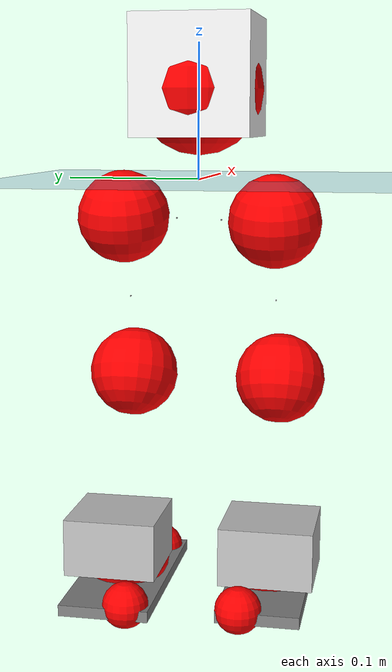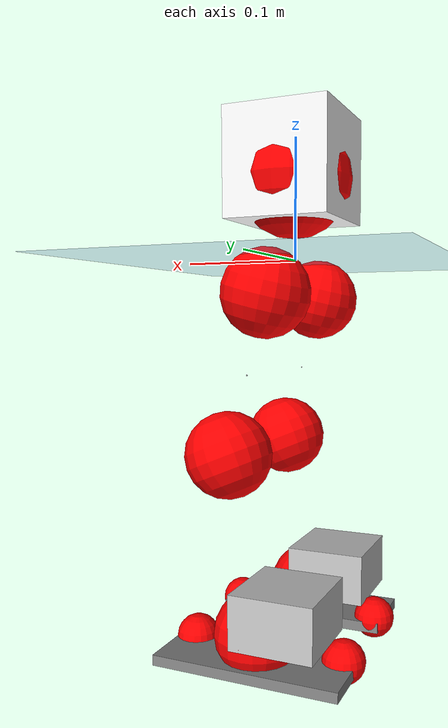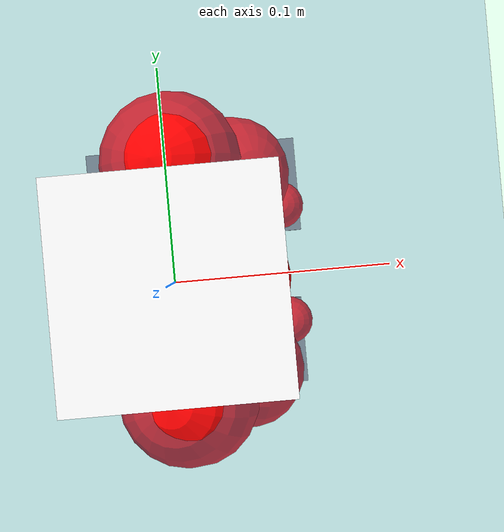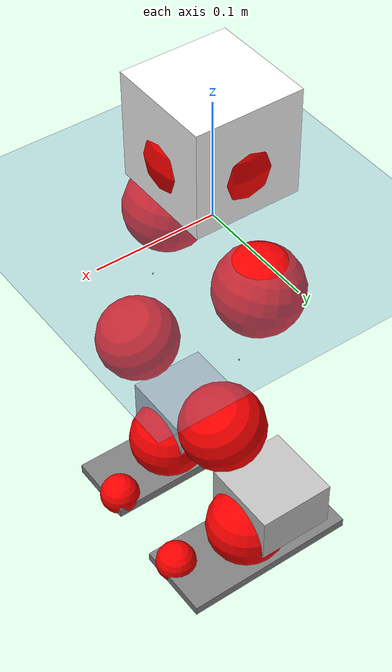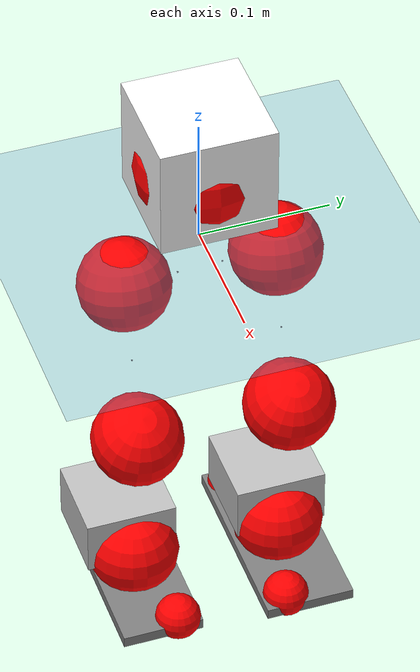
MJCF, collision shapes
<mujoco model="pi_12dof_release_v1">
  <compiler angle="radian" assetdir="assets" balanceinertia="true" inertiafromgeom="false"/>

  <option timestep="0.005" density="1.2" viscosity="2e-05"/>

  <size nkey="1"/>

  <visual>
    <quality shadowsize="8192"/>
    <map shadowclip="0.5"/>
  </visual>

  <default>
    <default class="/">
      <joint armature="0.01" damping="0.01" frictionloss="0.01"/>
      <geom contype="0" conaffinity="0" group="1" solref="-1000 -80"/>
      <site size="0.01 0.005 0.005" group="5"/>
      <general forcelimited="true" biastype="affine" gainprm="20" biasprm="0 -20 -0.5"/>
      <default class="foot">
        <geom size="0.0845 0.036 0.005" type="box" condim="6" group="4" priority="1" friction="0.9 0.2 0.2" solimp="0.015 1 0.005"/>
      </default>
      <default class="reward_collision_sphere">
        <geom group="5" rgba="1 0 0 1"/>
      </default>
    </default>
  </default>

  <asset>
    <texture type="skybox" colorspace="auto" name="//unnamed_texture_0" builtin="gradient" rgb1="0.95 0.95 0.95" rgb2="0.95 0.95 0.95" width="100" height="600"/>
    <texture type="2d" colorspace="auto" name="texplane" builtin="checker" rgb1="0.345 0.575 0.748" rgb2="0.345 0.575 0.748" markrgb="1 1 1" width="512" height="512"/>
    <material name="MatPlane" class="/" texture="texplane" texuniform="true" texrepeat="2 2" specular="0.9"/>
    <mesh name="baselink_1" class="/" file="baselink_1.STL"/>
    <mesh name="r_hip_pitch_link" class="/" file="r_hip_pitch_link.STL"/>
    <mesh name="r_hip_roll_link" class="/" file="r_hip_roll_link.STL"/>
    <mesh name="r_thigh_link" class="/" file="r_thigh_link.STL"/>
    <mesh name="r_calf_link" class="/" file="r_calf_link.STL"/>
    <mesh name="r_ankle_pitch_link" class="/" file="r_ankle_pitch_link.STL"/>
    <mesh name="r_ankle_roll_link" class="/" file="r_ankle_roll_link.STL"/>
    <mesh name="l_hip_pitch_link" class="/" file="l_hip_pitch_link.STL"/>
    <mesh name="l_hip_roll_link" class="/" file="l_hip_roll_link.STL"/>
    <mesh name="l_thigh_link" class="/" file="l_thigh_link.STL"/>
    <mesh name="l_calf_link" class="/" file="l_calf_link.STL"/>
    <mesh name="l_ankle_pitch_link" class="/" file="l_ankle_pitch_link.STL"/>
    <mesh name="l_ankle_roll_link" class="/" file="l_ankle_roll_link.STL"/>
  </asset>

  <worldbody>
    <geom name="floor" class="/" size="100 100 0.125" type="plane" group="0" material="MatPlane"/>
    <light name="toplight_shadow" class="/" pos="0 0 5" dir="0.0990148 0.0990148 -0.990148" type="directional" ambient="0.04 0.04 0.04" diffuse="0.55 0.55 0.55" specular="0.12 0.12 0.12"/>
    <light name="toplight_fill" class="/" pos="0 0 5" dir="0.0990148 0.0990148 -0.990148" type="directional" castshadow="false" ambient="0.04 0.04 0.04" diffuse="0.3 0.3 0.3" specular="0.08 0.08 0.08"/>
    <body name="trunk" pos="0.0014398 0.000112948 0.000941203" quat="1 0.000147626 0.000273789 -0.000337979">
      <inertial pos="0.000941315 -0.00148117 0.0370374" quat="0.694231 0.00798333 0.00875099 0.719655" mass="1.41519" diaginertia="0.00784282 0.00203946 0.00281983"/>
      <joint name="//unnamed_joint_0" type="free"/>
      <geom name="//unnamed_geom_1" class="/" type="mesh" density="0" rgba="1 1 1 1" mesh="baselink_1"/>
      <geom name="//unnamed_geom_2" class="/" size="0.0438654 0.0438654 0.0438654" pos="0 0 0.0742755" type="box" rgba="1 1 1 1"/>
      <geom name="//unnamed_geom_3" class="reward_collision_sphere" size="0.0482519" pos="0 0 0.064991"/>
      <site name="imu" class="/" pos="-0.000111749 -0.00453835 0.00370927" size="0.00877308"/>
      <camera name="track" class="/" pos="0 -1.4892 0" quat="0.707107 0.707107 0 0" mode="trackcom"/>
      <camera name="ego_camera" class="/" pos="0.071916 0 0.16712" quat="-0.5 -0.5 0.5 0.5"/>
      <body name="r_hip_pitch_link" pos="0.000172033 -0.0168736 -0.031268" quat="0.992256 0.000310028 -0.124206 -4.43765e-05">
        <inertial pos="0.00127578 -0.0417988 8.97344e-05" quat="-0.0184905 0.705702 -0.02922 0.707664" mass="0.2537" diaginertia="8.99381e-05 2.22618e-05 5.72313e-05"/>
        <joint name="r_hip_pitch_joint" class="/" pos="0 0 0" axis="0.000372433 -1 -0.000255847" stiffness="0.00334729" range="-1.7292 1.25958" armature="0.00885628" damping="0.0143977" frictionloss="0.00866159"/>
        <geom name="//unnamed_geom_4" class="/" type="mesh" density="0" rgba="0.75294 0.75294 0.75294 1" mesh="r_hip_pitch_link"/>
        <geom name="//unnamed_geom_5" class="/" size="0.000438654 0.000438654 0.000438654" type="box" rgba="0.75294 0.75294 0.75294 1"/>
        <body name="r_hip_roll_link" pos="-0.000799868 -0.0404961 -0.000241356" quat="1 4.17046e-05 2.17284e-05 -1.77233e-05">
          <inertial pos="-0.00124044 0.000337989 -0.0581679" quat="0.706032 -0.0791343 -0.0824838 0.698894" mass="0.264052" diaginertia="0.000268715 6.38425e-05 9.06879e-05"/>
          <joint name="r_hip_roll_joint" class="/" pos="0 0 0" axis="-0.999999 -0.000416684 0.00092706" range="-0.121264 0.503936" armature="0.00913699" damping="0" frictionloss="0.00888244"/>
          <geom name="//unnamed_geom_6" class="/" type="mesh" density="0" rgba="0.75294 0.75294 0.75294 1" mesh="r_hip_roll_link"/>
          <geom name="//unnamed_geom_7" class="/" size="0.000438654 0.000438654 0.000438654" type="box" rgba="0.75294 0.75294 0.75294 1"/>
          <geom name="//unnamed_geom_8" class="reward_collision_sphere" size="0.0350923"/>
          <body name="r_thigh_link" pos="-0.000142705 0.000178251 -0.0635255" quat="1 -0.000221328 0.000258583 7.2091e-05">
            <inertial pos="0.000334478 0.000498947 -0.0446774" quat="0.739492 0.673162 -0.000792832 0.00181717" mass="0.0761444" diaginertia="0.000104316 2.19014e-05 4.05903e-05"/>
            <joint name="r_thigh_joint" class="/" pos="0 0 0" axis="0.000212569 5.16309e-05 -1" range="-0.301871 0.577271" armature="0.00909719" damping="0.0041721" frictionloss="0.00812984"/>
            <geom name="//unnamed_geom_9" class="/" type="mesh" density="0" rgba="0.75294 0.75294 0.75294 1" mesh="r_thigh_link"/>
            <geom name="//unnamed_geom_10" class="/" size="0.000438654 0.000438654 0.000438654" type="box" rgba="0.75294 0.75294 0.75294 1"/>
            <body name="r_calf_link" pos="-0.000155084 -0.00190082 -0.0661702" quat="0.947657 6.34506e-06 0.319289 8.68733e-06">
              <inertial pos="-0.00124213 -0.00111649 -0.0651057" quat="0.999981 -0.00288078 -0.00105099 0.00530827" mass="0.549159" diaginertia="0.00289293 0.000809392 0.000122734"/>
              <joint name="r_calf_joint" class="/" pos="0 0 0" axis="-0.00206806 -0.999998 0.000593094" range="-1.6254 0.642166" armature="0.00860127" damping="0.0103223" frictionloss="0.00870605"/>
              <geom name="//unnamed_geom_11" class="/" type="mesh" density="0" rgba="0.75294 0.75294 0.75294 1" mesh="r_calf_link"/>
              <geom name="//unnamed_geom_12" class="/" size="0.000438654 0.000438654 0.000438654" type="box" rgba="0.75294 0.75294 0.75294 1"/>
              <geom name="//unnamed_geom_13" class="reward_collision_sphere" size="0.0350923"/>
              <body name="r_ankle_pitch_link" pos="4.69115e-05 -8.54539e-05 -0.129691" quat="0.980069 5.90248e-05 -0.19866 3.89452e-05">
                <inertial pos="0.00377179 0.00283598 -0.000532817" quat="0.000745351 0.705139 -0.00247705 0.709064" mass="0.119099" diaginertia="0.000251965 5.16508e-05 8.3897e-05"/>
                <joint name="r_ankle_pitch_joint" class="/" pos="0 0 0" axis="-0.00316172 -0.999993 -0.00186773" range="-1.31658 0.502767" armature="0.00871199" damping="0.00729132" frictionloss="0.00839244"/>
                <geom name="//unnamed_geom_14" class="/" type="mesh" density="0" rgba="0.75294 0.75294 0.75294 1" mesh="r_ankle_pitch_link"/>
                <geom name="//unnamed_geom_15" class="/" size="0.034215 0.0350923 0.0219327" type="box" rgba="0.75294 0.75294 0.75294 1"/>
                <body name="r_ankle_roll_link" pos="0.0737617 0.00345679 0.000599738" quat="1 -3.33206e-05 -5.93293e-06 2.8699e-06">
                  <inertial pos="-0.0230982 4.64351e-05 -0.0133462" quat="0.557403 0.43101 0.434239 0.56122" mass="0.351336" diaginertia="0.000915411 0.000235703 0.000196083"/>
                  <joint name="r_ankle_roll_joint" class="/" pos="0 0 0" axis="-0.999973 -0.00485651 0.0054893" range="-0.169207 0.147972" armature="0.00908442" damping="0.00404482" frictionloss="0.00867791"/>
                  <geom name="//unnamed_geom_16" class="/" type="mesh" density="0" rgba="0.75294 0.75294 0.75294 1" mesh="r_ankle_roll_link"/>
                  <geom name="//unnamed_geom_17" class="/" type="mesh" rgba="0.75294 0.75294 0.75294 1" mesh="r_ankle_roll_link"/>
                  <geom name="right_foot" class="foot" size="0.0736317 0.0312131 0.0044404" pos="-0.0489029 0 -0.0408515"/>
                  <geom name="//unnamed_geom_19" class="reward_collision_sphere" size="0.0350923" pos="-0.047944 0 -0.0185689"/>
                  <geom name="//unnamed_geom_20" class="reward_collision_sphere" size="0.0175462" pos="0.0143832 0.014892 -0.0371377"/>
                  <geom name="//unnamed_geom_21" class="reward_collision_sphere" size="0.0175462" pos="-0.115066 0.014892 -0.0371377"/>
                  <site name="right_foot" class="foot" pos="-0.0489029 0 -0.0408515" size="0.00877308"/>
                </body>
              </body>
            </body>
          </body>
        </body>
      </body>
      <body name="l_hip_pitch_link" pos="4.67267e-05 0.0172139 -0.0302972" quat="0.992178 3.00234e-05 -0.12483 4.46187e-05">
        <inertial pos="0.000140018 0.0409999 0.000235094" quat="-0.0433231 0.708659 0.0335947 0.703418" mass="0.267605" diaginertia="0.000104607 2.42193e-05 7.04594e-05"/>
        <joint name="l_hip_pitch_joint" class="/" pos="0 0 0" axis="-0.000194402 0.999986 -0.00531704" range="-1.2605 1.74875" armature="0.00871777" damping="0.00643398" frictionloss="0.00870496"/>
        <geom name="//unnamed_geom_22" class="/" type="mesh" density="0" rgba="0.75294 0.75294 0.75294 1" mesh="l_hip_pitch_link"/>
        <geom name="//unnamed_geom_23" class="/" size="0.000438654 0.000438654 0.000438654" type="box" rgba="0.75294 0.75294 0.75294 1"/>
        <body name="l_hip_roll_link" pos="0.000100019 0.0412019 0.000638121" quat="1 2.51027e-05 0.000134927 0.000174519">
          <inertial pos="-0.00126006 -0.000255929 -0.0564289" quat="0.700335 -0.0724955 -0.0775817 0.705873" mass="0.265826" diaginertia="0.000268767 6.38775e-05 8.78784e-05"/>
          <joint name="l_hip_roll_joint" class="/" pos="0 0 0" axis="-0.999997 0.0012394 -0.00193514" range="-0.508788 0.116247" armature="0.00901811" damping="0.00570008" frictionloss="0.00902677"/>
          <geom name="//unnamed_geom_24" class="/" type="mesh" density="0" rgba="0.75294 0.75294 0.75294 1" mesh="l_hip_roll_link"/>
          <geom name="//unnamed_geom_25" class="/" size="0.000438654 0.000438654 0.000438654" type="box" rgba="0.75294 0.75294 0.75294 1"/>
          <geom name="//unnamed_geom_26" class="reward_collision_sphere" size="0.0350923"/>
          <body name="l_thigh_link" pos="8.21308e-05 -0.000850755 -0.065571" quat="1 -4.7801e-05 0.000103624 0.000198502">
            <inertial pos="0.000895379 -0.000189304 -0.0443587" quat="0.67757 0.735449 -0.00344496 0.00096211" mass="0.075607" diaginertia="0.000101815 2.14659e-05 3.9039e-05"/>
            <joint name="l_thigh_joint" class="/" pos="0 0 0" axis="0.00226302 0.00270943 -0.999994" range="-0.606486 0.28783" armature="0.00839331" damping="0" frictionloss="0.00836288"/>
            <geom name="//unnamed_geom_27" class="/" type="mesh" density="0" rgba="0.75294 0.75294 0.75294 1" mesh="l_thigh_link"/>
            <geom name="//unnamed_geom_28" class="/" size="0.000438654 0.000438654 0.000438654" type="box" rgba="0.75294 0.75294 0.75294 1"/>
            <body name="l_calf_link" pos="-0.000467207 0.00130955 -0.0656167" quat="0.947735 0.000477888 0.319059 0.000247905">
              <inertial pos="0.0015048 0.00180657 -0.0665588" quat="0.999975 0.00249549 0.0010802 0.00651064" mass="0.548238" diaginertia="0.00284953 0.000802422 0.000120057"/>
              <joint name="l_calf_joint" class="/" pos="0 0 0" axis="0.00306624 0.999992 -0.00261128" stiffness="0.00390895" range="-0.659608 1.66945" armature="0.00868471" damping="0.00546597" frictionloss="0.0086183"/>
              <geom name="//unnamed_geom_29" class="/" type="mesh" density="0" rgba="0.75294 0.75294 0.75294 1" mesh="l_calf_link"/>
              <geom name="//unnamed_geom_30" class="/" size="0.000438654 0.000438654 0.000438654" type="box" rgba="0.75294 0.75294 0.75294 1"/>
              <geom name="//unnamed_geom_31" class="reward_collision_sphere" size="0.0350923"/>
              <body name="l_ankle_pitch_link" pos="0.000884949 0.0008667 -0.131415" quat="0.980064 1.53377e-05 -0.198682 -2.21645e-05">
                <inertial pos="0.00421155 -0.000667463 -0.000169352" quat="-0.00210609 0.706601 0.00177526 0.707607" mass="0.118279" diaginertia="0.000247971 5.04017e-05 8.26316e-05"/>
                <joint name="l_ankle_pitch_joint" class="/" pos="0 0 0" axis="-0.00140943 0.999998 -0.00128497" range="-0.50261 1.30917" armature="0.00875179" damping="0.00969195" frictionloss="0.00837574"/>
                <geom name="//unnamed_geom_32" class="/" type="mesh" density="0" rgba="0.75294 0.75294 0.75294 1" mesh="l_ankle_pitch_link"/>
                <geom name="//unnamed_geom_33" class="/" size="0.034215 0.0350923 0.0219327" type="box" rgba="0.75294 0.75294 0.75294 1"/>
                <body name="l_ankle_roll_link" pos="0.0730069 1.13627e-05 -0.00103378" quat="1 3.85381e-05 2.24671e-05 -7.78238e-05">
                  <inertial pos="-0.0235903 -0.000417577 -0.013108" quat="0.559571 0.428132 0.437874 0.558434" mass="0.35134" diaginertia="0.000910978 0.000235956 0.000196221"/>
                  <joint name="l_ankle_roll_joint" class="/" pos="0 0 0" axis="-0.999989 -0.00432623 0.0018852" range="-0.150139 0.13343" armature="0.00900542" damping="0.00631244" frictionloss="0.00912621"/>
                  <geom name="//unnamed_geom_34" class="/" type="mesh" density="0" rgba="0.75294 0.75294 0.75294 1" mesh="l_ankle_roll_link"/>
                  <geom name="//unnamed_geom_35" class="/" type="mesh" rgba="0.75294 0.75294 0.75294 1" mesh="l_ankle_roll_link"/>
                  <geom name="left_foot" class="foot" size="0.0775904 0.0342695 0.00425556" pos="-0.0489029 0 -0.0408515"/>
                  <geom name="//unnamed_geom_37" class="reward_collision_sphere" size="0.0350923" pos="-0.047944 0 -0.0185689"/>
                  <geom name="//unnamed_geom_38" class="reward_collision_sphere" size="0.0175462" pos="0.0143832 -0.014892 -0.0371377"/>
                  <geom name="//unnamed_geom_39" class="reward_collision_sphere" size="0.0175462" pos="-0.115066 -0.014892 -0.0371377"/>
                  <site name="left_foot" class="foot" pos="-0.0489029 0 -0.0408515" size="0.00877308"/>
                </body>
              </body>
            </body>
          </body>
        </body>
      </body>
    </body>
  </worldbody>

  <contact>
    <pair class="/" geom1="floor" geom2="right_foot" name="//unnamed_contact_1"/>
    <pair class="/" geom1="floor" geom2="left_foot" name="//unnamed_contact_0"/>
  </contact>

  <actuator>
    <general name="r_hip_pitch_joint" class="/" joint="r_hip_pitch_joint" forcerange="-18.5134 18.5134" gainprm="17.4505" biasprm="0 -17.4505 -0.42806"/>
    <general name="r_hip_roll_joint" class="/" joint="r_hip_roll_joint" forcerange="-17.8903 17.8903" gainprm="17.4505" biasprm="0 -17.4505 -0.42806"/>
    <general name="r_thigh_joint" class="/" joint="r_thigh_joint" forcerange="-18.1044 18.1044" gainprm="17.4505" biasprm="0 -17.4505 -0.42806"/>
    <general name="r_calf_joint" class="/" joint="r_calf_joint" forcerange="-19.3152 19.3152" gainprm="17.4505" biasprm="0 -17.4505 -0.42806"/>
    <general name="r_ankle_pitch_joint" class="/" joint="r_ankle_pitch_joint" forcerange="-18.712 18.712" gainprm="17.4505" biasprm="0 -17.4505 -0.42806"/>
    <general name="r_ankle_roll_joint" class="/" joint="r_ankle_roll_joint" forcerange="-17.8674 17.8674" gainprm="17.4505" biasprm="0 -17.4505 -0.42806"/>
    <general name="l_hip_pitch_joint" class="/" joint="l_hip_pitch_joint" forcerange="-18.3607 18.3607" gainprm="17.4505" biasprm="0 -17.4505 -0.42806"/>
    <general name="l_hip_roll_joint" class="/" joint="l_hip_roll_joint" forcerange="-19.0627 19.0627" gainprm="17.4505" biasprm="0 -17.4505 -0.42806"/>
    <general name="l_thigh_joint" class="/" joint="l_thigh_joint" forcerange="-18.1361 18.1361" gainprm="17.4505" biasprm="0 -17.4505 -0.42806"/>
    <general name="l_calf_joint" class="/" joint="l_calf_joint" forcerange="-18.6131 18.6131" gainprm="17.4505" biasprm="0 -17.4505 -0.42806"/>
    <general name="l_ankle_pitch_joint" class="/" joint="l_ankle_pitch_joint" forcerange="-17.7667 17.7667" gainprm="17.4505" biasprm="0 -17.4505 -0.42806"/>
    <general name="l_ankle_roll_joint" class="/" joint="l_ankle_roll_joint" forcerange="-18.2836 18.2836" gainprm="17.4505" biasprm="0 -17.4505 -0.42806"/>
  </actuator>

  <sensor>
    <gyro site="imu" name="imu_angular_velocity"/>
    <velocimeter site="imu" name="imu_linear_velocity"/>
    <framelinvel objtype="site" objname="left_foot" name="left_foot_global_linear_velocity"/>
    <framelinvel objtype="site" objname="right_foot" name="right_foot_global_linear_velocity"/>
  </sensor>

  <keyframe>
    <key name="home" qpos="0 0 0.291 1 0 0 0 0.4 0 0 -0.8 0.4 0 -0.4 0 0 0.8 -0.4 0"/>
  </keyframe>
</mujoco>
